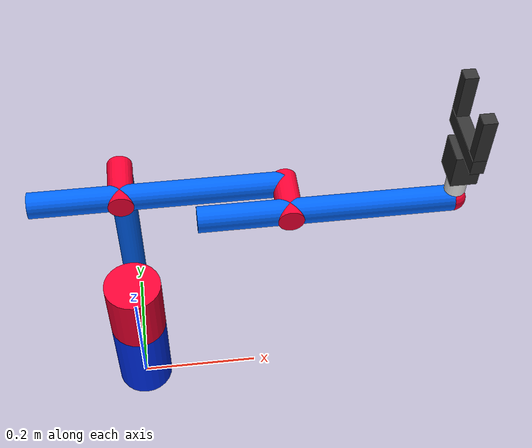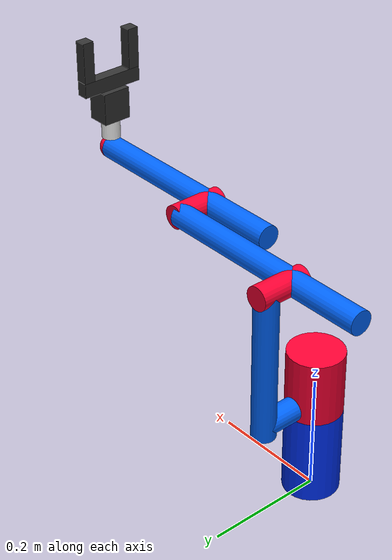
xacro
<?xml version="1.0" ?>

<!-- Revolute-Revolute Manipulator -->
<robot name="pentaxis" xmlns:xacro="http://www.ros.org/wiki/xacro">

	<!-- Denavit-Hartenberg parameters -->
	<xacro:property name="d0" value="0.152"/>
	<xacro:property name="d1" value="0.259"/>
	<xacro:property name="d5" value="0.035"/>
	<xacro:property name="d6" value="0.121"/> <!-- not implemented -->
	<xacro:property name="a2" value="0.252"/> <!-- OG: 0.252 -->
	<xacro:property name="a3" value="0.250"/>

	<xacro:property name="j1_offset" value="0.0"/> <!-- not implemented -->
	<xacro:property name="j2_offset" value="0.0"/> <!-- -0.87+2*PI -->
	<xacro:property name="j3_offset" value="0.0"/>
	<xacro:property name="j4_offset" value="0.0"/>
	<xacro:property name="j5_offset" value="0.0"/> <!-- not implemented -->

	<xacro:property name="j2_lo_limit" value="-3.14159"/>
	<xacro:property name="j2_up_limit" value="1.10"/>
	<xacro:property name="j3_lo_limit" value="-2.15"/>
	<xacro:property name="j3_up_limit" value="2.15"/>
	<xacro:property name="j4_lo_limit" value="0"/>
	<xacro:property name="j4_up_limit" value="3.14159"/>

  <link name="base_footprint">
	<visual>
      <origin rpy="0 0 0" xyz="0 0 0"/>
      <geometry>
        <box size="0.001 0.001 0.001"/>
      </geometry>
    </visual>
  </link>

  <joint name="base_footprint_joint" type="fixed">
    <origin rpy="0 0 0" xyz="0 0 0"/>
    <child link="base_link"/>
    <parent link="base_footprint"/>
  </joint>

  <link name="base_link">
    <visual>
      <geometry>
        <cylinder length="${d0}" radius="0.0469507"/>
      </geometry>
      <origin rpy="0 0 0" xyz="0 0 0.076"/>
      <material name="blue1">
        <color rgba="0 0.2 1 1"/>
      </material>
    </visual>
  </link>

  <link name="link1"> <!-- motor (in red) -->
    <visual>
      <geometry>
        <cylinder length="0.11" radius="0.0469507"/>
      </geometry>
      <origin rpy="0 0 0" xyz="0 0 0"/>
      <material name="red1">
        <color rgba="1 0 0.2 1"/>
      </material>
    </visual>
  </link>
  <!-- JOINT1 Base - Link1 -->
  <joint name="base_link_to_link1" type="revolute">
    <axis xyz="0 0 1"/>
    <limit effort="1000.0" lower="-2.5" upper="2.5" velocity="0.5"/>
    <parent link="base_link"/>
    <child link="link1"/>
	<!--z=base_link.length+link1.length/2 -->
    <origin xyz="0 0 ${d0+0.11/2}"/>
  </joint>

  <!-- Link 1_1 -->
  <link name="link1_1">
    <visual>
      <geometry>
        <cylinder length="0.06" radius="0.02"/>
      </geometry>
      <origin rpy="1.57079632679 0 0" xyz="0 0 0"/>
      <material name="blue2">
        <color rgba="0 0.4 1 1"/>
      </material>
    </visual>
  </link>
  <joint name="link1_to_link1_1" type="fixed">
    <parent link="link1"/>
    <child link="link1_1"/>
    <origin rpy="0 0 0" xyz="0 0.0769507 -0.035"/>
  </joint>

  <link name="link1_2">
    <visual>
      <geometry>
        <cylinder length="${d1}" radius="0.02"/>
      </geometry>
      <origin rpy="0 0 0" xyz="0 0 0"/>
      <material name="blue2">
        <color rgba="0 0.4 1 1"/>
      </material>
    </visual>
  </link>
  <joint name="link1_1_to_link1_2" type="fixed">
    <axis xyz="0 0 0"/>
    <parent link="link1_1"/>
    <child link="link1_2"/>
		<!-- z=link1_2.length/2 - link1_1.radius = 0.1095 -->
		<!-- y=-link1_1.length/2 = -0.03 -->
    <origin rpy="0 0 0" xyz="0 0.03 ${d1/2 - 0.02}"/>
  </joint>
  <!-- Link 2 -->
  <link name="link2">
    <visual>
      <geometry>
        <cylinder length="0.09" radius="0.02"/>
      </geometry>
      <origin rpy="1.57079632679 0 0" xyz="0 0 0"/>
      <material name="red1">
        <color rgba="1 0 0.2 1"/>
      </material>
    </visual>
  </link>
  <joint name="link1_to_link2" type="revolute">
    <axis xyz="0 1 0"/>
    <limit effort="1000.0" lower="${j2_lo_limit}" upper="${j2_up_limit}" velocity="0.5"/>
    <parent link="link1_2"/>
    <child link="link2"/>
		<!-- y=link2.length/2 - link2.radius = 0.025 -->
		<!-- z=link1_2/2 = 0.1295 -->
    <origin rpy="0 ${j2_offset} 0" xyz="0 -0.025 0.1295"/>
  </joint>
  <!-- link2_1 -->
  <link name="link2_1">
    <visual>
      <geometry>
        <cylinder length="${a2+0.140}" radius="0.02"/>
      </geometry>
      <origin rpy="0 1.57079632679 0" xyz="0 0 0"/>
      <material name="blue2">
        <color rgba="0 0.4 1 1"/>
      </material>
    </visual>
  </link>
  <joint name="link2_to_link2_1" type="fixed">
    <axis xyz="0 0 0"/>
    <parent link="link2"/>
    <child link="link2_1"/>
	<!-- y=link2.length/2 - link2_1.radius/2 = -0.025 -->
	<!-- x=link2_1.length/2 - 0.140 = 0.056 -->
    <origin rpy="0 0 0" xyz="${(a2+0.140)/2 - 0.140} -0.025 0"/>
  </joint>
  <!-- Link 3 -->
  <link name="link3">
    <visual>
      <geometry>
        <cylinder length="0.09" radius="0.02"/>
      </geometry>
      <origin rpy="-1.57079632679 0 0" xyz="0 0 0"/>
      <material name="red1">
        <color rgba="1 0 0.2 1"/>
      </material>
    </visual>
  </link>
  <joint name="link2_to_link3" type="revolute">
    <axis xyz="0 1 0"/>
    <limit effort="1000.0" lower="${j3_lo_limit}" upper="${j3_up_limit}" velocity="0.5"/>
    <parent link="link2_1"/>
    <child link="link3"/>
		<!-- y=-link2_1.length/2 - 0.0069507 -->
		<!-- x=link3.length/2 - link2_1.radius -->
    <origin rpy="0 ${j3_offset} 0" xyz="0.196 -0.0319507 0"/>
  </joint>
  <!-- link3_1 -->
  <link name="link3_1">
    <visual>
      <geometry>
        <cylinder length="${a3+0.140}" radius="0.02"/>
      </geometry>
      <origin rpy="0 1.57079632679 0" xyz="0 0 0"/>
      <material name="blue2">
        <color rgba="0 0.4 1 1"/>
      </material>
    </visual>
  </link>
  <joint name="link3_to_link3_1" type="fixed">
    <axis xyz="0 0 0"/>
    <parent link="link3"/>
    <child link="link3_1"/>
	<!-- y=link3.length/2 - link3_1.radius-->
	<!-- x=link3_1/2 - 0.140 -->
    <origin rpy="0 0 0" xyz="${(a3+0.14)/2 - 0.14} -0.025 0"/>
  </joint>
  <link name="link4">
    <visual>
      <geometry>
        <sphere radius="0.02"/>
      </geometry>
      <origin rpy="0 0 0" xyz="0 0 0"/>
      <material name="red1">
        <color rgba="1 0 0.2 1"/>
      </material>
    </visual>
  </link>
  <joint name="link3_to_link4" type="revolute">
    <axis xyz="0 1 0"/>
    <limit effort="1000.0" lower="${j4_lo_limit}" upper="${j4_up_limit}" velocity="0.5"/>
    <parent link="link3_1"/>
    <child link="link4"/>
	<!-- z=link3_1.length/2 -->
    <origin rpy="0 ${j4_offset} 0" xyz="0.195 0 0"/>
  </joint>
  <link name="link5">
    <visual>
      <geometry>
        <cylinder length="${d5}" radius="0.016"/>
      </geometry>
			<!-- z=link5.length/2 -->
      <origin rpy="0 0 0" xyz="0 0 0.002"/>
      <material name="color2">
        <color rgba="1 1 1 1"/>
      </material>
    </visual>
  </link>
  <joint name="link4_to_link5" type="revolute">
    <axis xyz="0 0 1"/>
    <limit effort="1000.0" lower="-1.570796327" upper="1.570796327" velocity="0.5"/>
    <parent link="link4"/>
    <child link="link5"/>
		<origin rpy="0 0 0" xyz="0 0 ${d5}"/>
  </joint>
  <link name="eef1">
    <visual>
      <geometry>
        <box size="0.05 0.04 0.055"/>
      </geometry>
      <origin rpy="0 0 0" xyz="0 0 0"/>
      <material name="color3">
        <color rgba="0.2 0.2 0.2 1"/>
      </material>
    </visual>
  </link>

  <joint name="link5_to_eef1" type="fixed">
    <parent link="link5"/>
    <child link="eef1"/>
    <origin rpy="0 0 -1.570796327" xyz="0 0 0.047"/>
  </joint>

  <link name="eef2">
    <visual>
      <geometry>
        <box size="0.11 0.02 0.025"/>
      </geometry>
      <origin rpy="0 0 0" xyz="0 0 0"/>
      <material name="color3">
        <color rgba="0.2 0.2 0.2 1"/>
      </material>
    </visual>
  </link>

  <joint name="eef1_to_eef2" type="fixed">
    <parent link="eef1"/>
    <child link="eef2"/>
    <origin rpy="0 0 0" xyz="0 0 0.04"/>
  </joint>

  <link name="eef_left">
    <visual>
      <geometry>
        <box size="0.02 0.02 0.07"/>
      </geometry>
      <origin rpy="0 0 0" xyz="0 0 0"/>
      <material name="color3">
        <color rgba="0.2 0.2 0.2 1"/>
      </material>
    </visual>
  </link>

  <joint name="eef2_to_eef_left" type="prismatic">
    <axis xyz="1 0 0"/>
    <limit effort="1000.0" lower="-0.045" upper="0" velocity="0.5"/>
    <parent link="eef2"/>
    <child link="eef_left"/>
    <origin rpy="0 0 0" xyz="0.045 0 0.0475"/>
  </joint>

  <link name="eef_right">
    <visual>
      <geometry>
        <box size="0.02 0.02 0.07"/>
      </geometry>
      <origin rpy="0 0 0" xyz="0 0 0"/>
      <material name="color3">
        <color rgba="0.2 0.2 0.2 1"/>
      </material>
    </visual>
  </link>

  <joint name="eef2_to_eef_right" type="prismatic">
    <axis xyz="-1 0 0"/>
    <limit effort="1000.0" lower="-0.045" upper="0" velocity="0.5"/>
    <mimic joint="eef2_to_eef_left" multiplier="1.0" offset="0.0"/>
    <parent link="eef2"/>
    <child link="eef_right"/>
    <origin rpy="0 0 0" xyz="-0.045 0 0.0475"/>
  </joint>
</robot>
